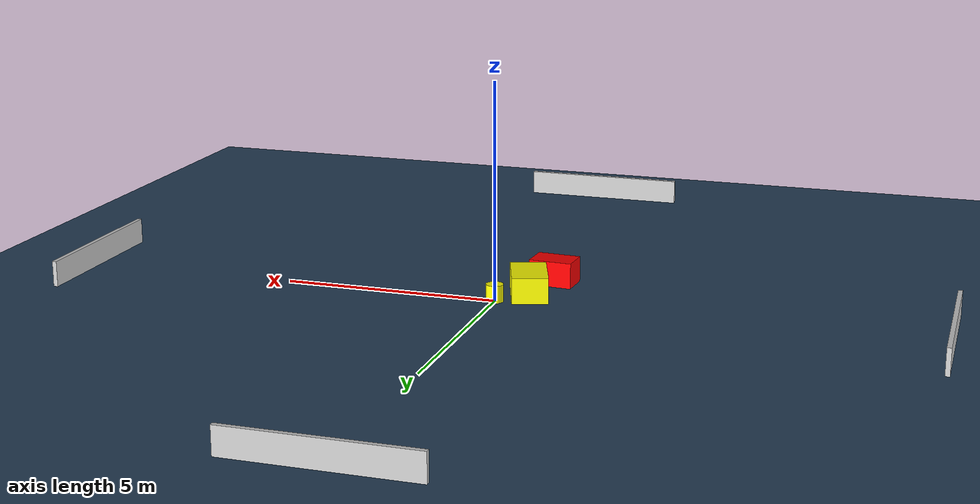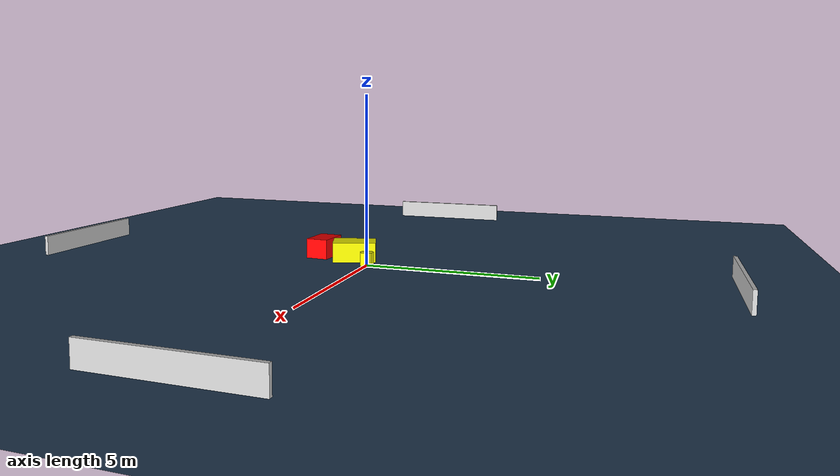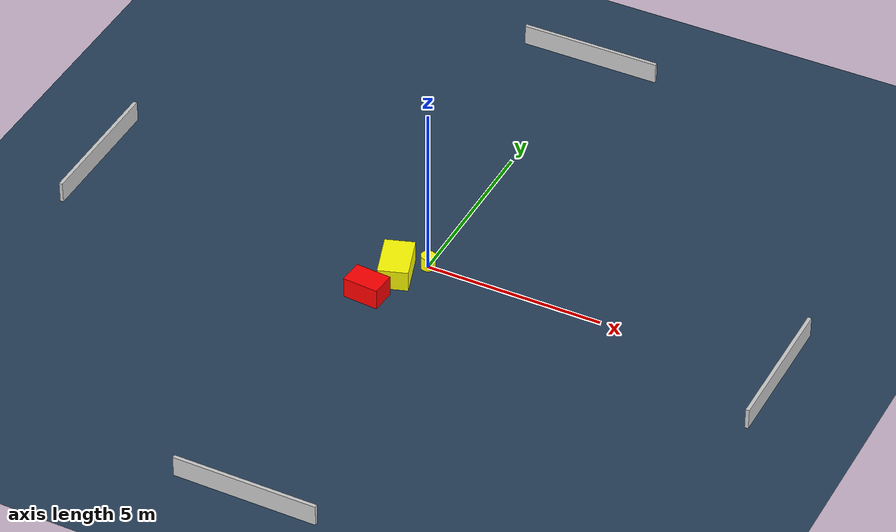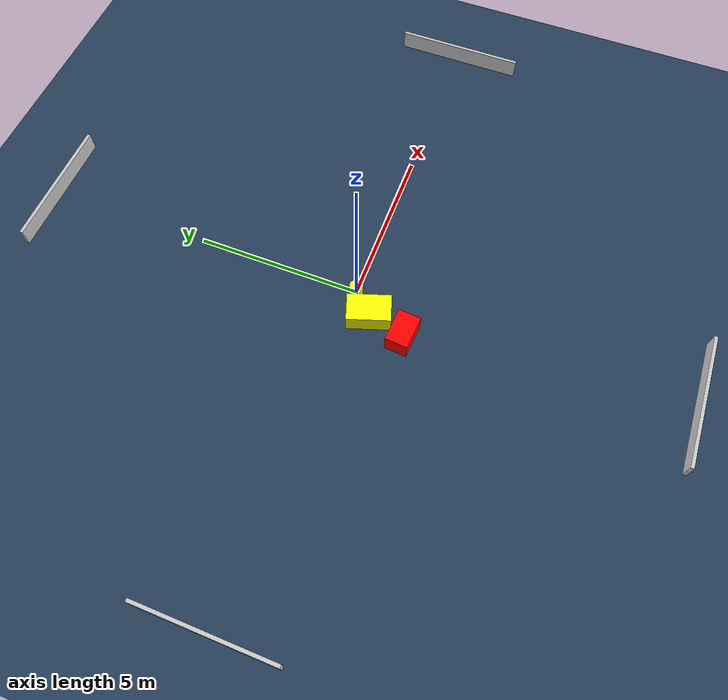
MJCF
<?xml version="1.0" ?>
<mujoco model="generated_environment">
  <option timestep="0.01" integrator="RK4" cone="elliptic"/>
  <default>
    <geom density="1"/>
  </default>
  <asset>
    <texture builtin="gradient" height="3072" name="skybox" rgb1="0.3 0.5 0.7" rgb2="0 0 0" type="skybox" width="512"/>
    <texture builtin="checker" height="300" name="groundplane" rgb1="0.2 0.3 0.4" rgb2="0.1 0.2 0.3" type="2d" width="300"/>
    <material name="groundplane" reflectance="0.2" texrepeat="5 5" texture="groundplane"/>
  </asset>
  <worldbody>
    <light dir="0 0 -1" directional="true" pos="0 0 1.5"/>
    <geom condim="3" friction="0.5 0.005 0.001" material="groundplane" name="floor" pos="0 0 0" size="0 0 0.05" type="plane"/>
    <body name="walls">
      <geom name="wall_1" condim="4" pos="-10.0 0.0 0.3" rgba="0.800000011920929 0.800000011920929 0.800000011920929 1.0" size="0.05 2.0 0.3" type="box"/>
      <geom name="wall_2" condim="4" pos="10.0 0.0 0.3" rgba="0.800000011920929 0.800000011920929 0.800000011920929 1.0" size="0.05 2.0 0.3" type="box"/>
      <geom name="wall_3" condim="4" pos="0.0 -10.0 0.3" rgba="0.800000011920929 0.800000011920929 0.800000011920929 1.0" size="2.0 0.05 0.3" type="box"/>
      <geom name="wall_4" condim="4" pos="0.0 10.0 0.3" rgba="0.800000011920929 0.800000011920929 0.800000011920929 1.0" size="2.0 0.05 0.3" type="box"/>
    </body>
    <body name="robot">
      <joint name="joint_x" type="slide" pos="0 0 0" axis="1 0 0"/>
      <joint name="joint_y" type="slide" pos="0 0 0" axis="0 1 0"/>
      <geom name="robot" type="cylinder" pos="0.0 0.0 0.2" size="0.2 0.2 0.0" mass="5.0" friction="1.0 0.005 0.0001" condim="4" rgba="1.0 1.0 0.0 1.0"/>
    </body>
    <body name="obstacle_1_movable">
      <geom name="obstacle_1_movable" condim="4" pos="-0.617838475314638 -0.6222785759420725 0.3" euler="0 0 198.50083470622116" friction="0.0 0.005 0.001" rgba="1.0 1.0 0.0 1.0" size="0.4140501254941699 0.6458532029783892 0.3" type="box" mass="0.1"/>
      <joint type="free"/>
    </body>
    <body name="obstacle_2_static">
      <geom name="obstacle_2_static" condim="4" pos="-0.9031326647152946 -1.751537468957253 0.3" euler="0 0 85.94096896532648" friction="0.0 0.005 0.001" rgba="1.0 0.0 0.0 1.0" size="0.3396042383828369 0.503912027570615 0.3" type="box"/>
    </body>
  </worldbody>
  <actuator>
    <motor name="actuator_x" joint="joint_x" gear="1" ctrlrange="-1 1"/>
    <motor name="actuator_y" joint="joint_y" gear="1" ctrlrange="-1 1"/>
  </actuator>
</mujoco>
